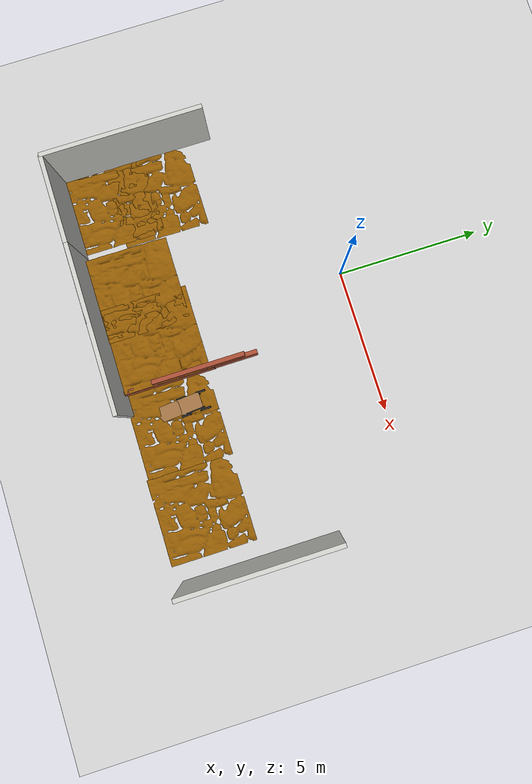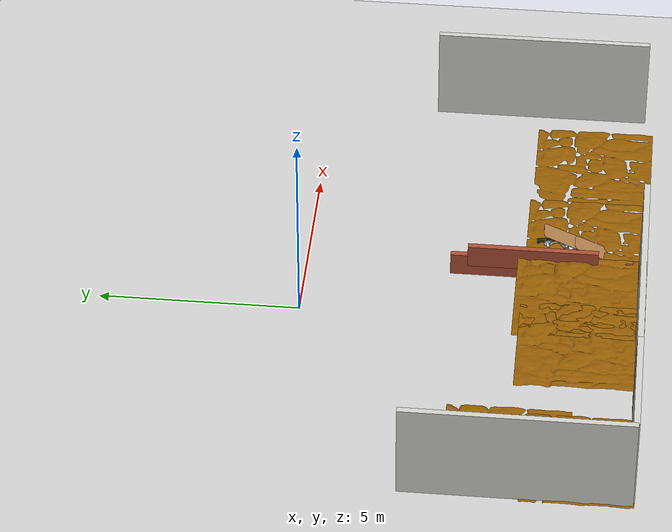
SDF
<sdf version="1.6">
 <world name="default">
  <model name="ground_plane">
   <static>1</static>
   <link name="link">
    <collision name="collision">
     <geometry><plane><normal>0 0 1</normal><size>100 100</size></plane></geometry>
     <surface>
      <contact><collide_bitmask>65535</collide_bitmask></contact>
      <friction><ode><mu>100</mu><mu2>50</mu2></ode></friction>
     </surface>
    </collision>
    <visual name="visual">
     <cast_shadows>0</cast_shadows>
     <geometry><plane><normal>0 0 1</normal><size>100 100</size></plane></geometry>
     <material>
      <script><uri>file://media/materials/scripts/gazebo.material</uri><name>Gazebo/Grey</name></script>
     </material>
    </visual>
   </link>
  </model>
  <model name="pared_1_1">
   <pose>-6.17787 -5.68421 0 0 -0 0</pose>
   <link name="Wall_21">
    <collision name="Wall_21_Collision">
     <geometry><box><size>5.5 0.15 2.5</size></box></geometry>
     <pose>0 0 1.25 0 -0 0</pose>
    </collision>
    <visual name="Wall_21_Visual">
     <pose>0 0 1.25 0 -0 0</pose>
     <geometry><box><size>5.5 0.15 2.5</size></box></geometry>
     <material>
      <script><uri>file://media/materials/scripts/gazebo.material</uri><name>Gazebo/CeilingTiled</name></script>
      <ambient>1 1 1 1</ambient>
     </material>
     <meta><layer>0</layer></meta>
    </visual>
    <pose>0 0 0 0 -0 -1.5708</pose>
   </link>
   <static>1</static>
  </model>
  <model name="pared_2_2">
   <pose>-0.261836 -8.38493 0 0 -0 0</pose>
   <link name="Wall_24">
    <collision name="Wall_24_Collision">
     <geometry><box><size>5.75 0.15 2.5</size></box></geometry>
     <pose>0 0 1.25 0 -0 0</pose>
    </collision>
    <visual name="Wall_24_Visual">
     <pose>0 0 1.25 0 -0 0</pose>
     <geometry><box><size>5.75 0.15 2.5</size></box></geometry>
     <material>
      <script><uri>file://media/materials/scripts/gazebo.material</uri><name>Gazebo/CeilingTiled</name></script>
      <ambient>1 1 1 1</ambient>
     </material>
     <meta><layer>0</layer></meta>
    </visual>
   </link>
   <static>1</static>
  </model>
  <model name="pared_1_4">
   <pose>8.44952 -5.53816 0 0 -0 0</pose>
   <link name="Wall_21">
    <collision name="Wall_21_Collision">
     <geometry><box><size>5.5 0.15 2.5</size></box></geometry>
     <pose>0 0 1.25 0 -0 0</pose>
    </collision>
    <visual name="Wall_21_Visual">
     <pose>0 0 1.25 0 -0 0</pose>
     <geometry><box><size>5.5 0.15 2.5</size></box></geometry>
     <material>
      <script><uri>file://media/materials/scripts/gazebo.material</uri><name>Gazebo/CeilingTiled</name></script>
      <ambient>1 1 1 1</ambient>
     </material>
     <meta><layer>0</layer></meta>
    </visual>
    <pose>0 0 0 0 -0 -1.5708</pose>
   </link>
   <static>1</static>
  </model>
  <model name="suelo_alto_4">
   <link name="link_0">
    <inertial>
     <mass>1</mass>
     <inertia>
      <ixx>0.166667</ixx>
      <ixy>0</ixy>
      <ixz>0</ixz>
      <iyy>0.166667</iyy>
      <iyz>0</iyz>
      <izz>0.166667</izz>
     </inertia>
    </inertial>
    <pose>-2e-06 0 0 0 -0 0</pose>
    <gravity>0</gravity>
    <visual name="visual">
     <pose>0 0 0.6 1.57 -0 0</pose>
     <geometry>
      <mesh>
       <uri>/home/christyan/catkin_sureveg/src/explorador_2/worlds/Plantas/roca2.stl</uri>
       <scale>0.005 0.003 0.005</scale>
      </mesh>
     </geometry>
     <material>
      <lighting>1</lighting>
      <script><uri>file://media/materials/scripts/gazebo.material</uri><name>Gazebo/Grey</name></script>
      <shader type="vertex"><normal_map>__default__</normal_map></shader>
      <ambient>0.561 0.349 0.008 1</ambient>
      <diffuse>0.333 0.341 0.325 1</diffuse>
      <specular>0.561 0.349 0.008 1</specular>
      <emissive>0 0 0 1</emissive>
     </material>
    </visual>
    <collision name="collision">
     <pose>0 0 0.6 1.57 -0 0</pose>
     <geometry>
      <mesh>
       <uri>/home/christyan/catkin_sureveg/src/explorador_2/worlds/Plantas/roca2.stl</uri>
       <scale>0.005 0.003 0.005</scale>
      </mesh>
     </geometry>
     <surface>
      <friction>
       <ode><mu>1</mu><mu2>1</mu2><fdir1>0 0 0</fdir1><slip1>0</slip1><slip2>0</slip2></ode>
       <torsional>
        <coefficient>1</coefficient>
        <patch_radius>0</patch_radius>
        <surface_radius>0</surface_radius>
        <use_patch_radius>1</use_patch_radius>
        <ode><slip>0</slip></ode>
       </torsional>
      </friction>
      <bounce><restitution_coefficient>0</restitution_coefficient><threshold>1e+06</threshold></bounce>
      <contact>
       <collide_without_contact>1</collide_without_contact>
       <collide_without_contact_bitmask>1</collide_without_contact_bitmask>
       <collide_bitmask>1</collide_bitmask>
       <ode>
        <soft_cfm>0</soft_cfm>
        <soft_erp>0.2</soft_erp>
        <kp>1e+13</kp>
        <kd>1</kd>
        <max_vel>0.01</max_vel>
        <min_depth>0</min_depth>
       </ode>
       <bullet>
        <split_impulse>1</split_impulse>
        <split_impulse_penetration_threshold>-0.01</split_impulse_penetration_threshold>
        <soft_cfm>0</soft_cfm>
        <soft_erp>0.2</soft_erp>
        <kp>1e+13</kp>
        <kd>1</kd>
       </bullet>
      </contact>
     </surface>
    </collision>
   </link>
   <static>0</static>
   <pose>-1.44381 -6.94746 0 0 -0 0</pose>
  </model>
  <model name="pared_corta_ladrillo_3">
   <pose>1.78731 -5.23372 0 0 -0 0</pose>
   <link name="Wall_13">
    <collision name="Wall_13_Collision">
     <geometry><box><size>3.25 0.15 0.6</size></box></geometry>
     <pose>0 0 0.3 0 -0 0</pose>
    </collision>
    <visual name="Wall_13_Visual">
     <pose>0 0 0.3 0 -0 0</pose>
     <geometry><box><size>3.25 0.15 0.6</size></box></geometry>
     <material>
      <script><uri>file://media/materials/scripts/gazebo.material</uri><name>Gazebo/Bricks</name></script>
      <ambient>0.996078 0.47451 0.0196078 1</ambient>
     </material>
     <meta><layer>0</layer></meta>
    </visual>
    <pose>0 -0 0 0 -0 1.5708</pose>
   </link>
   <static>1</static>
  </model>
  <model name="pared_corta_ladrillo_4">
   <pose>1.80713 -6.7816 0 0 -0 0</pose>
   <link name="Wall_13">
    <collision name="Wall_13_Collision">
     <geometry><box><size>3.25 0.15 0.6</size></box></geometry>
     <pose>0 0 0.3 0 -0 0</pose>
    </collision>
    <visual name="Wall_13_Visual">
     <pose>0 0 0.3 0 -0 0</pose>
     <geometry><box><size>3.25 0.15 0.6</size></box></geometry>
     <material>
      <script><uri>file://media/materials/scripts/gazebo.material</uri><name>Gazebo/Bricks</name></script>
      <ambient>0.996078 0.47451 0.0196078 1</ambient>
     </material>
     <meta><layer>0</layer></meta>
    </visual>
    <pose>0 -0 0 0 -0 1.5708</pose>
   </link>
   <static>1</static>
  </model>
  <model name="suelo_alto_6">
   <link name="link_0">
    <inertial>
     <mass>1</mass>
     <inertia>
      <ixx>0.166667</ixx>
      <ixy>0</ixy>
      <ixz>0</ixz>
      <iyy>0.166667</iyy>
      <iyz>0</iyz>
      <izz>0.166667</izz>
     </inertia>
    </inertial>
    <pose>-2e-06 0 0 0 -0 0</pose>
    <gravity>0</gravity>
    <visual name="visual">
     <pose>0 0 0.6 1.57 -0 0</pose>
     <geometry>
      <mesh>
       <uri>/home/christyan/catkin_sureveg/src/explorador_2/worlds/Plantas/roca2.stl</uri>
       <scale>0.005 0.003 0.005</scale>
      </mesh>
     </geometry>
     <material>
      <lighting>1</lighting>
      <script><uri>file://media/materials/scripts/gazebo.material</uri><name>Gazebo/Grey</name></script>
      <shader type="vertex"><normal_map>__default__</normal_map></shader>
      <ambient>0.561 0.349 0.008 1</ambient>
      <diffuse>0.333 0.341 0.325 1</diffuse>
      <specular>0.561 0.349 0.008 1</specular>
      <emissive>0 0 0 1</emissive>
     </material>
    </visual>
    <collision name="collision">
     <pose>0 0 0.6 1.57 -0 0</pose>
     <geometry>
      <mesh>
       <uri>/home/christyan/catkin_sureveg/src/explorador_2/worlds/Plantas/roca2.stl</uri>
       <scale>0.005 0.003 0.005</scale>
      </mesh>
     </geometry>
     <surface>
      <friction>
       <ode><mu>1</mu><mu2>1</mu2><fdir1>0 0 0</fdir1><slip1>0</slip1><slip2>0</slip2></ode>
       <torsional>
        <coefficient>1</coefficient>
        <patch_radius>0</patch_radius>
        <surface_radius>0</surface_radius>
        <use_patch_radius>1</use_patch_radius>
        <ode><slip>0</slip></ode>
       </torsional>
      </friction>
      <bounce><restitution_coefficient>0</restitution_coefficient><threshold>1e+06</threshold></bounce>
      <contact>
       <collide_without_contact>1</collide_without_contact>
       <collide_without_contact_bitmask>1</collide_without_contact_bitmask>
       <collide_bitmask>1</collide_bitmask>
       <ode>
        <soft_cfm>0</soft_cfm>
        <soft_erp>0.2</soft_erp>
        <kp>1e+13</kp>
        <kd>1</kd>
        <max_vel>0.01</max_vel>
        <min_depth>0</min_depth>
       </ode>
       <bullet>
        <split_impulse>1</split_impulse>
        <split_impulse_penetration_threshold>-0.01</split_impulse_penetration_threshold>
        <soft_cfm>0</soft_cfm>
        <soft_erp>0.2</soft_erp>
        <kp>1e+13</kp>
        <kd>1</kd>
       </bullet>
      </contact>
     </surface>
    </collision>
   </link>
   <static>0</static>
   <pose>0.373886 -6.79201 0 0 -0 0</pose>
  </model>
  <model name="Jaguar_30">
   <link name="base_link">
    <inertial>
     <pose>0.631513 -0.32769 -0.040585 0 -0 0</pose>
     <mass>31.8451</mass>
     <inertia>
      <ixx>0.733928</ixx>
      <ixy>0.00446716</ixy>
      <ixz>0.0110101</ixz>
      <iyy>1.30637</iyy>
      <iyz>-0.00437329</iyz>
      <izz>1.72941</izz>
     </inertia>
    </inertial>
    <collision name="base_link_collision">
     <geometry>
      <mesh><scale>1 1 1</scale><uri>/home/christyan/catkin_sureveg/src/Jaguar_30/meshes/base_link.STL</uri></mesh>
     </geometry>
    </collision>
    <collision name="base_link_fixed_joint_lump__bas1_collision_1">
     <pose>0.844257 -0.331168 0.061124 1.5708 0.573578 0</pose>
     <geometry>
      <mesh><scale>1 1 1</scale><uri>/home/christyan/catkin_sureveg/src/Jaguar_30/meshes/bas1.STL</uri></mesh>
     </geometry>
    </collision>
    <collision name="base_link_fixed_joint_lump__bas2_collision_2">
     <pose>0.43634 -0.212986 0.061124 1.5708 0.72467 -3.14159</pose>
     <geometry>
      <mesh><scale>1 1 1</scale><uri>/home/christyan/catkin_sureveg/src/Jaguar_30/meshes/bas2.STL</uri></mesh>
     </geometry>
    </collision>
    <collision name="base_link_fixed_joint_lump__h1_collision_3">
     <pose>0.399294 -0.091623 -0.04953 1.5708 -0 0</pose>
     <geometry>
      <mesh><scale>1 1 1</scale><uri>/home/christyan/catkin_sureveg/src/Jaguar_30/meshes/h1.STL</uri></mesh>
     </geometry>
    </collision>
    <collision name="base_link_fixed_joint_lump__h2_collision_4">
     <pose>0.399294 -0.561623 -0.04953 1.5708 -0 3.14159</pose>
     <geometry>
      <mesh><scale>1 1 1</scale><uri>/home/christyan/catkin_sureveg/src/Jaguar_30/meshes/h2.STL</uri></mesh>
     </geometry>
    </collision>
    <visual name="base_link_visual">
     <geometry>
      <mesh><scale>1 1 1</scale><uri>/home/christyan/catkin_sureveg/src/Jaguar_30/meshes/base_link.STL</uri></mesh>
     </geometry>
     <material>
      <script><name>Gazebo/Grey</name><uri>file://media/materials/scripts/gazebo.material</uri></script>
     </material>
    </visual>
    <visual name="base_link_fixed_joint_lump__bas1_visual_1">
     <pose>0.844257 -0.331168 0.061124 1.5708 0.573578 0</pose>
     <geometry>
      <mesh><scale>1 1 1</scale><uri>/home/christyan/catkin_sureveg/src/Jaguar_30/meshes/bas1.STL</uri></mesh>
     </geometry>
     <material>
      <script><name>Gazebo/Grey</name><uri>file://media/materials/scripts/gazebo.material</uri></script>
     </material>
    </visual>
    <visual name="base_link_fixed_joint_lump__bas2_visual_2">
     <pose>0.43634 -0.212986 0.061124 1.5708 0.72467 -3.14159</pose>
     <geometry>
      <mesh><scale>1 1 1</scale><uri>/home/christyan/catkin_sureveg/src/Jaguar_30/meshes/bas2.STL</uri></mesh>
     </geometry>
     <material>
      <script><name>Gazebo/Grey</name><uri>file://media/materials/scripts/gazebo.material</uri></script>
     </material>
    </visual>
    <visual name="base_link_fixed_joint_lump__h1_visual_3">
     <pose>0.399294 -0.091623 -0.04953 1.5708 -0 0</pose>
     <geometry>
      <mesh><scale>1 1 1</scale><uri>/home/christyan/catkin_sureveg/src/Jaguar_30/meshes/h1.STL</uri></mesh>
     </geometry>
     <material>
      <script><name>Gazebo/Black</name><uri>file://media/materials/scripts/gazebo.material</uri></script>
     </material>
    </visual>
    <visual name="base_link_fixed_joint_lump__h2_visual_4">
     <pose>0.399294 -0.561623 -0.04953 1.5708 -0 3.14159</pose>
     <geometry>
      <mesh><scale>1 1 1</scale><uri>/home/christyan/catkin_sureveg/src/Jaguar_30/meshes/h2.STL</uri></mesh>
     </geometry>
     <material>
      <script><name>Gazebo/Black</name><uri>file://media/materials/scripts/gazebo.material</uri></script>
     </material>
    </visual>
   </link>
   <link name="p1">
    <pose>0.844257 -0.331168 0.061124 1.5708 0.573578 0</pose>
    <inertial>
     <pose>-0.429299 0.073496 -0.005862 0 -0 0</pose>
     <mass>1.94644</mass>
     <inertia>
      <ixx>0.14016</ixx>
      <ixy>-0.0588447</ixy>
      <ixz>-0.00112032</ixz>
      <iyy>0.0810402</iyy>
      <iyz>0.00253372</iyz>
      <izz>0.143161</izz>
     </inertia>
    </inertial>
    <collision name="p1_collision">
     <geometry>
      <mesh><scale>1 1 1</scale><uri>/home/christyan/catkin_sureveg/src/Jaguar_30/meshes/p1.STL</uri></mesh>
     </geometry>
    </collision>
    <collision name="p1_fixed_joint_lump__tap1_collision_1">
     <pose>-0.515815 0 0.062256 0 -0 0.702939</pose>
     <geometry>
      <mesh><scale>1 1 1</scale><uri>/home/christyan/catkin_sureveg/src/Jaguar_30/meshes/tap1.STL</uri></mesh>
     </geometry>
    </collision>
    <visual name="p1_visual">
     <geometry>
      <mesh><scale>1 1 1</scale><uri>/home/christyan/catkin_sureveg/src/Jaguar_30/meshes/p1.STL</uri></mesh>
     </geometry>
    </visual>
    <visual name="p1_fixed_joint_lump__tap1_visual_1">
     <pose>-0.515815 0 0.062256 0 -0 0.702939</pose>
     <geometry>
      <mesh><scale>1 1 1</scale><uri>/home/christyan/catkin_sureveg/src/Jaguar_30/meshes/tap1.STL</uri></mesh>
     </geometry>
     <material>
      <script><name>Gazebo/Wood</name><uri>file://media/materials/scripts/gazebo.material</uri></script>
     </material>
    </visual>
   </link>
   <joint name="p1" type="prismatic">
    <child>p1</child>
    <parent>base_link</parent>
    <axis>
     <xyz>-0.839965 0 0.542641</xyz>
     <limit><lower>0</lower><upper>0</upper><effort>0</effort><velocity>0</velocity></limit>
     <dynamics><spring_reference>0</spring_reference><spring_stiffness>0</spring_stiffness></dynamics>
     <use_parent_model_frame>1</use_parent_model_frame>
    </axis>
    <physics><ode><limit><cfm>0</cfm><erp>0.2</erp></limit></ode></physics>
   </joint>
   <link name="rampa_des">
    <pose>0.510827 -0.581522 0.331185 1.5708 -0.395347 -0</pose>
    <inertial>
     <pose>-0.785282 0.010431 -0.265 0 -0 0</pose>
     <mass>1.40525</mass>
     <inertia>
      <ixx>0.0320948</ixx>
      <ixy>-0.00334456</ixy>
      <ixz>1.48431e-16</ixz>
      <iyy>0.123723</iyy>
      <iyz>-1.09164e-17</iyz>
      <izz>0.0918745</izz>
     </inertia>
    </inertial>
    <collision name="rampa_des_collision">
     <geometry>
      <mesh><scale>1 1 1</scale><uri>/home/christyan/catkin_sureveg/src/Jaguar_30/meshes/rampa_des.STL</uri></mesh>
     </geometry>
    </collision>
    <visual name="rampa_des_visual">
     <geometry>
      <mesh><scale>1 1 1</scale><uri>/home/christyan/catkin_sureveg/src/Jaguar_30/meshes/rampa_des.STL</uri></mesh>
     </geometry>
     <material>
      <script><name>Gazebo/Wood</name><uri>file://media/materials/scripts/gazebo.material</uri></script>
     </material>
    </visual>
   </link>
   <joint name="rampa_des" type="prismatic">
    <child>rampa_des</child>
    <parent>p1</parent>
    <axis>
     <xyz>0.922863 -0 0.385129</xyz>
     <limit><lower>0</lower><upper>0</upper><effort>0</effort><velocity>0</velocity></limit>
     <dynamics><spring_reference>0</spring_reference><spring_stiffness>0</spring_stiffness></dynamics>
     <use_parent_model_frame>1</use_parent_model_frame>
    </axis>
    <physics><ode><limit><cfm>0</cfm><erp>0.2</erp></limit></ode></physics>
   </joint>
   <link name="p2">
    <pose>0.43634 -0.212986 0.061124 1.5708 0.72467 -3.14159</pose>
    <inertial>
     <pose>-0.295976 0.060523 -0.026669 0 -0 0</pose>
     <mass>0.228887</mass>
     <inertia>
      <ixx>0.000115861</ixx>
      <ixy>0.000448579</ixy>
      <ixz>-1.04548e-10</ixz>
      <iyy>0.00221782</iyy>
      <iyz>-1.38424e-10</iyz>
      <izz>0.00230969</izz>
     </inertia>
    </inertial>
    <collision name="p2_collision">
     <geometry>
      <mesh><scale>1 1 1</scale><uri>/home/christyan/catkin_sureveg/src/Jaguar_30/meshes/p2.STL</uri></mesh>
     </geometry>
    </collision>
    <visual name="p2_visual">
     <geometry>
      <mesh><scale>1 1 1</scale><uri>/home/christyan/catkin_sureveg/src/Jaguar_30/meshes/p2.STL</uri></mesh>
     </geometry>
    </visual>
   </link>
   <joint name="p2" type="prismatic">
    <child>p2</child>
    <parent>base_link</parent>
    <axis>
     <xyz>-0.748718 -0 -0.662889</xyz>
     <limit><lower>0</lower><upper>0</upper><effort>0</effort><velocity>0</velocity></limit>
     <dynamics><spring_reference>0</spring_reference><spring_stiffness>0</spring_stiffness></dynamics>
     <use_parent_model_frame>1</use_parent_model_frame>
    </axis>
   </joint>
   <link name="f1">
    <pose>0.869294 0 -0.04395 1.5708 -0.034203 3.14159</pose>
    <inertial>
     <pose>-0.078852 0.001667 -0.040364 0 -0 0</pose>
     <mass>1.44866</mass>
     <inertia>
      <ixx>0.00466422</ixx>
      <ixy>0.00046521</ixy>
      <ixz>0.00113574</ixz>
      <iyy>0.0193983</iyy>
      <iyz>-1.6619e-05</iyz>
      <izz>0.0201484</izz>
     </inertia>
    </inertial>
    <collision name="f1_collision">
     <geometry>
      <mesh><scale>1 1 1</scale><uri>/home/christyan/catkin_sureveg/src/Jaguar_30/meshes/f1.STL</uri></mesh>
     </geometry>
    </collision>
    <visual name="f1_visual">
     <geometry>
      <mesh><scale>1 1 1</scale><uri>/home/christyan/catkin_sureveg/src/Jaguar_30/meshes/f1.STL</uri></mesh>
     </geometry>
     <material>
      <script><name>Gazebo/Black</name><uri>file://media/materials/scripts/gazebo.material</uri></script>
     </material>
    </visual>
   </link>
   <joint name="f1" type="revolute">
    <child>f1</child>
    <parent>base_link</parent>
    <axis>
     <xyz>0 1 -0</xyz>
     <limit><lower>0</lower><upper>0</upper><effort>0</effort><velocity>0</velocity></limit>
     <dynamics><spring_reference>0</spring_reference><spring_stiffness>0</spring_stiffness></dynamics>
     <use_parent_model_frame>1</use_parent_model_frame>
    </axis>
    <physics><ode><limit><cfm>0</cfm><erp>0.2</erp></limit></ode></physics>
   </joint>
   <link name="f2">
    <pose>0.399294 0 -0.043725 -1.5708 -0.043158 0</pose>
    <inertial>
     <pose>-0.078864 -0.000954 -0.040364 0 -0 0</pose>
     <mass>1.44866</mass>
     <inertia>
      <ixx>0.00464959</ixx>
      <ixy>-2.51701e-05</ixy>
      <ixz>0.00113567</ixz>
      <iyy>0.0194129</iyy>
      <iyz>2.11318e-05</iyz>
      <izz>0.0201484</izz>
     </inertia>
    </inertial>
    <collision name="f2_collision">
     <geometry>
      <mesh><scale>1 1 1</scale><uri>/home/christyan/catkin_sureveg/src/Jaguar_30/meshes/f2.STL</uri></mesh>
     </geometry>
    </collision>
    <visual name="f2_visual">
     <geometry>
      <mesh><scale>1 1 1</scale><uri>/home/christyan/catkin_sureveg/src/Jaguar_30/meshes/f2.STL</uri></mesh>
     </geometry>
     <material>
      <script><name>Gazebo/Black</name><uri>file://media/materials/scripts/gazebo.material</uri></script>
     </material>
    </visual>
   </link>
   <joint name="f2" type="revolute">
    <child>f2</child>
    <parent>base_link</parent>
    <axis>
     <xyz>0 1 -0</xyz>
     <limit><lower>0</lower><upper>0</upper><effort>0</effort><velocity>0</velocity></limit>
     <dynamics><spring_reference>0</spring_reference><spring_stiffness>0</spring_stiffness></dynamics>
     <use_parent_model_frame>1</use_parent_model_frame>
    </axis>
    <physics><ode><limit><cfm>0</cfm><erp>0.2</erp></limit></ode></physics>
   </joint>
   <link name="f3">
    <pose>0.869294 -0.421623 -0.04395 -1.5708 -0.034203 3.14159</pose>
    <inertial>
     <pose>-0.078788 -0.003574 0.191259 0 -0 0</pose>
     <mass>1.44866</mass>
     <inertia>
      <ixx>0.00466757</ixx>
      <ixy>-0.000515439</ixy>
      <ixz>0.00113434</ixz>
      <iyy>0.0193949</iyy>
      <iyz>5.88592e-05</iyz>
      <izz>0.0201484</izz>
     </inertia>
    </inertial>
    <collision name="f3_collision">
     <geometry>
      <mesh><scale>1 1 1</scale><uri>/home/christyan/catkin_sureveg/src/Jaguar_30/meshes/f3.STL</uri></mesh>
     </geometry>
    </collision>
    <visual name="f3_visual">
     <geometry>
      <mesh><scale>1 1 1</scale><uri>/home/christyan/catkin_sureveg/src/Jaguar_30/meshes/f3.STL</uri></mesh>
     </geometry>
     <material>
      <script><name>Gazebo/Black</name><uri>file://media/materials/scripts/gazebo.material</uri></script>
     </material>
    </visual>
   </link>
   <joint name="f3" type="revolute">
    <child>f3</child>
    <parent>base_link</parent>
    <axis>
     <xyz>-0 -1 -0</xyz>
     <limit><lower>0</lower><upper>0</upper><effort>0</effort><velocity>0</velocity></limit>
     <dynamics><spring_reference>0</spring_reference><spring_stiffness>0</spring_stiffness></dynamics>
     <use_parent_model_frame>1</use_parent_model_frame>
    </axis>
    <physics><ode><limit><cfm>0</cfm><erp>0.2</erp></limit></ode></physics>
   </joint>
   <link name="f4">
    <pose>0.399294 -0.421623 -0.043725 1.5708 -0.043158 0</pose>
    <inertial>
     <pose>-0.078864 -0.000954 0.191259 0 -0 0</pose>
     <mass>1.44866</mass>
     <inertia>
      <ixx>0.00464959</ixx>
      <ixy>-2.51701e-05</ixy>
      <ixz>0.00113567</ixz>
      <iyy>0.0194129</iyy>
      <iyz>2.11318e-05</iyz>
      <izz>0.0201484</izz>
     </inertia>
    </inertial>
    <collision name="f4_collision">
     <geometry>
      <mesh><scale>1 1 1</scale><uri>/home/christyan/catkin_sureveg/src/Jaguar_30/meshes/f4.STL</uri></mesh>
     </geometry>
    </collision>
    <visual name="f4_visual">
     <geometry>
      <mesh><scale>1 1 1</scale><uri>/home/christyan/catkin_sureveg/src/Jaguar_30/meshes/f4.STL</uri></mesh>
     </geometry>
     <material>
      <script><name>Gazebo/Black</name><uri>file://media/materials/scripts/gazebo.material</uri></script>
     </material>
    </visual>
   </link>
   <joint name="f4" type="revolute">
    <child>f4</child>
    <parent>base_link</parent>
    <axis>
     <xyz>0 -1 -0</xyz>
     <limit><lower>0</lower><upper>0</upper><effort>0</effort><velocity>0</velocity></limit>
     <dynamics><spring_reference>0</spring_reference><spring_stiffness>0</spring_stiffness></dynamics>
     <use_parent_model_frame>1</use_parent_model_frame>
    </axis>
    <physics><ode><limit><cfm>0</cfm><erp>0.2</erp></limit></ode></physics>
   </joint>
   <link name="r1">
    <pose>0.869294 -0.066623 -0.04395 -1.5708 -0.314929 3.14159</pose>
    <inertial>
     <pose>0 -4.2e-05 0.042573 0 -0 0</pose>
     <mass>1.24851</mass>
     <inertia>
      <ixx>0.00455644</ixx>
      <ixy>-1.0842e-19</ixy>
      <ixz>4.28387e-19</ixz>
      <iyy>0.00455966</iyy>
      <iyz>-1.9821e-06</iyz>
      <izz>0.00416875</izz>
     </inertia>
    </inertial>
    <collision name="r1_collision">
     <geometry>
      <mesh><scale>1 1 1</scale><uri>/home/christyan/catkin_sureveg/src/Jaguar_30/meshes/r1.STL</uri></mesh>
     </geometry>
    </collision>
    <visual name="r1_visual">
     <geometry>
      <mesh><scale>1 1 1</scale><uri>/home/christyan/catkin_sureveg/src/Jaguar_30/meshes/r1.STL</uri></mesh>
     </geometry>
     <material>
      <script><name>Gazebo/White</name><uri>file://media/materials/scripts/gazebo.material</uri></script>
     </material>
    </visual>
   </link>
   <joint name="r1" type="revolute">
    <child>r1</child>
    <parent>base_link</parent>
    <axis>
     <xyz>-0 -1 -0</xyz>
     <limit><lower>0</lower><upper>0</upper><effort>0</effort><velocity>0</velocity></limit>
     <dynamics><spring_reference>0</spring_reference><spring_stiffness>0</spring_stiffness></dynamics>
     <use_parent_model_frame>1</use_parent_model_frame>
    </axis>
    <physics><ode><limit><cfm>0</cfm><erp>0.2</erp></limit></ode></physics>
   </joint>
   <link name="r2">
    <pose>0.399294 0 -0.043725 -1.5708 -0.043158 0</pose>
    <inertial>
     <pose>-2.3e-05 3.6e-05 -0.109196 0 -0 0</pose>
     <mass>1.24851</mass>
     <inertia>
      <ixx>0.00455737</ixx>
      <ixy>-1.46024e-06</ixy>
      <ixz>1.06584e-06</ixz>
      <iyy>0.00455872</iyy>
      <iyz>-1.67114e-06</iyz>
      <izz>0.00416875</izz>
     </inertia>
    </inertial>
    <collision name="r2_collision">
     <geometry>
      <mesh><scale>1 1 1</scale><uri>/home/christyan/catkin_sureveg/src/Jaguar_30/meshes/r2.STL</uri></mesh>
     </geometry>
    </collision>
    <visual name="r2_visual">
     <geometry>
      <mesh><scale>1 1 1</scale><uri>/home/christyan/catkin_sureveg/src/Jaguar_30/meshes/r2.STL</uri></mesh>
     </geometry>
     <material>
      <script><name>Gazebo/White</name><uri>file://media/materials/scripts/gazebo.material</uri></script>
     </material>
    </visual>
   </link>
   <joint name="r2" type="revolute">
    <child>r2</child>
    <parent>base_link</parent>
    <axis>
     <xyz>0 1 -0</xyz>
     <limit><lower>0</lower><upper>0</upper><effort>0</effort><velocity>0</velocity></limit>
     <dynamics><spring_reference>0</spring_reference><spring_stiffness>0</spring_stiffness></dynamics>
     <use_parent_model_frame>1</use_parent_model_frame>
    </axis>
    <physics><ode><limit><cfm>0</cfm><erp>0.2</erp></limit></ode></physics>
   </joint>
   <link name="r3">
    <pose>0.869294 -0.386623 -0.04395 -1.5708 1.20901 0</pose>
    <inertial>
     <pose>0 -4.2e-05 -0.157427 0 -0 0</pose>
     <mass>1.24851</mass>
     <inertia>
      <ixx>0.00455644</ixx>
      <ixy>-5.42101e-19</ixy>
      <ixz>9.35971e-20</ixz>
      <iyy>0.00455966</iyy>
      <iyz>-1.9821e-06</iyz>
      <izz>0.00416875</izz>
     </inertia>
    </inertial>
    <collision name="r3_collision">
     <geometry>
      <mesh><scale>1 1 1</scale><uri>/home/christyan/catkin_sureveg/src/Jaguar_30/meshes/r3.STL</uri></mesh>
     </geometry>
    </collision>
    <visual name="r3_visual">
     <geometry>
      <mesh><scale>1 1 1</scale><uri>/home/christyan/catkin_sureveg/src/Jaguar_30/meshes/r3.STL</uri></mesh>
     </geometry>
     <material>
      <script><name>Gazebo/White</name><uri>file://media/materials/scripts/gazebo.material</uri></script>
     </material>
    </visual>
   </link>
   <joint name="r3" type="revolute">
    <child>r3</child>
    <parent>base_link</parent>
    <axis>
     <xyz>-0 1 -0</xyz>
     <limit><lower>0</lower><upper>0</upper><effort>0</effort><velocity>0</velocity></limit>
     <dynamics><spring_reference>0</spring_reference><spring_stiffness>0</spring_stiffness></dynamics>
     <use_parent_model_frame>1</use_parent_model_frame>
    </axis>
    <physics><ode><limit><cfm>0</cfm><erp>0.2</erp></limit></ode></physics>
   </joint>
   <link name="r4">
    <pose>0.399294 -0.386623 -0.043725 -1.5708 1.20901 0</pose>
    <inertial>
     <pose>0 -4.2e-05 -0.157427 0 -0 0</pose>
     <mass>1.24851</mass>
     <inertia>
      <ixx>0.00455644</ixx>
      <ixy>-1.19262e-18</ixy>
      <ixz>-9.9664e-19</ixz>
      <iyy>0.00455966</iyy>
      <iyz>-1.9821e-06</iyz>
      <izz>0.00416875</izz>
     </inertia>
    </inertial>
    <collision name="r4_collision">
     <geometry>
      <mesh><scale>1 1 1</scale><uri>/home/christyan/catkin_sureveg/src/Jaguar_30/meshes/r4.STL</uri></mesh>
     </geometry>
    </collision>
    <visual name="r4_visual">
     <geometry>
      <mesh><scale>1 1 1</scale><uri>/home/christyan/catkin_sureveg/src/Jaguar_30/meshes/r4.STL</uri></mesh>
     </geometry>
     <material>
      <script><name>Gazebo/White</name><uri>file://media/materials/scripts/gazebo.material</uri></script>
     </material>
    </visual>
   </link>
   <joint name="r4" type="revolute">
    <child>r4</child>
    <parent>base_link</parent>
    <axis>
     <xyz>-0 1 -0</xyz>
     <limit><lower>0</lower><upper>0</upper><effort>0</effort><velocity>0</velocity></limit>
     <dynamics><spring_reference>0</spring_reference><spring_stiffness>0</spring_stiffness></dynamics>
     <use_parent_model_frame>1</use_parent_model_frame>
    </axis>
    <physics><ode><limit><cfm>0</cfm><erp>0.2</erp></limit></ode></physics>
   </joint>
   <pose>2.50285 -6.88216 0.129387 0.003884 -0.000158 1.61213</pose>
  </model>
  <model name="suelo_1_15">
   <link name="link_0">
    <inertial>
     <mass>1</mass>
     <inertia>
      <ixx>0.166667</ixx>
      <ixy>0</ixy>
      <ixz>0</ixz>
      <iyy>0.166667</iyy>
      <iyz>0</iyz>
      <izz>0.166667</izz>
     </inertia>
    </inertial>
    <pose>-2e-06 0 0 0 -0 0</pose>
    <gravity>0</gravity>
    <visual name="visual">
     <pose>0 0 0 1.57 -0 0</pose>
     <geometry>
      <mesh>
       <uri>/home/christyan/catkin_sureveg/src/explorador_2/worlds/Plantas/roca2.stl</uri>
       <scale>0.005 0.003 0.005</scale>
      </mesh>
     </geometry>
     <material>
      <lighting>1</lighting>
      <script><uri>file://media/materials/scripts/gazebo.material</uri><name>Gazebo/Grey</name></script>
      <shader type="vertex"><normal_map>__default__</normal_map></shader>
      <ambient>0.561 0.349 0.008 1</ambient>
      <diffuse>0.333 0.341 0.325 1</diffuse>
      <specular>0.561 0.349 0.008 1</specular>
      <emissive>0 0 0 1</emissive>
     </material>
    </visual>
    <collision name="collision">
     <pose>0 0 0 1.57 -0 0</pose>
     <geometry>
      <mesh>
       <uri>/home/christyan/catkin_sureveg/src/explorador_2/worlds/Plantas/roca2.stl</uri>
       <scale>0.005 0.003 0.005</scale>
      </mesh>
     </geometry>
     <surface>
      <friction>
       <ode><mu>1</mu><mu2>1</mu2><fdir1>0 0 0</fdir1><slip1>0</slip1><slip2>0</slip2></ode>
       <torsional>
        <coefficient>1</coefficient>
        <patch_radius>0</patch_radius>
        <surface_radius>0</surface_radius>
        <use_patch_radius>1</use_patch_radius>
        <ode><slip>0</slip></ode>
       </torsional>
      </friction>
      <bounce><restitution_coefficient>0</restitution_coefficient><threshold>1e+06</threshold></bounce>
      <contact>
       <collide_without_contact>1</collide_without_contact>
       <collide_without_contact_bitmask>1</collide_without_contact_bitmask>
       <collide_bitmask>1</collide_bitmask>
       <ode>
        <soft_cfm>0</soft_cfm>
        <soft_erp>0.2</soft_erp>
        <kp>1e+13</kp>
        <kd>1</kd>
        <max_vel>0.01</max_vel>
        <min_depth>0</min_depth>
       </ode>
       <bullet>
        <split_impulse>1</split_impulse>
        <split_impulse_penetration_threshold>-0.01</split_impulse_penetration_threshold>
        <soft_cfm>0</soft_cfm>
        <soft_erp>0.2</soft_erp>
        <kp>1e+13</kp>
        <kd>1</kd>
       </bullet>
      </contact>
     </surface>
    </collision>
   </link>
   <static>0</static>
   <pose>3.34539 -6.95171 0 0 -0 0</pose>
  </model>
  <model name="suelo_1_16">
   <link name="link_0">
    <inertial>
     <mass>1</mass>
     <inertia>
      <ixx>0.166667</ixx>
      <ixy>0</ixy>
      <ixz>0</ixz>
      <iyy>0.166667</iyy>
      <iyz>0</iyz>
      <izz>0.166667</izz>
     </inertia>
    </inertial>
    <pose>-2e-06 0 0 0 -0 0</pose>
    <gravity>0</gravity>
    <visual name="visual">
     <pose>0 0 0 1.57 -0 0</pose>
     <geometry>
      <mesh>
       <uri>/home/christyan/catkin_sureveg/src/explorador_2/worlds/Plantas/roca2.stl</uri>
       <scale>0.005 0.003 0.005</scale>
      </mesh>
     </geometry>
     <material>
      <lighting>1</lighting>
      <script><uri>file://media/materials/scripts/gazebo.material</uri><name>Gazebo/Grey</name></script>
      <shader type="vertex"><normal_map>__default__</normal_map></shader>
      <ambient>0.561 0.349 0.008 1</ambient>
      <diffuse>0.333 0.341 0.325 1</diffuse>
      <specular>0.561 0.349 0.008 1</specular>
      <emissive>0 0 0 1</emissive>
     </material>
    </visual>
    <collision name="collision">
     <pose>0 0 0 1.57 -0 0</pose>
     <geometry>
      <mesh>
       <uri>/home/christyan/catkin_sureveg/src/explorador_2/worlds/Plantas/roca2.stl</uri>
       <scale>0.005 0.003 0.005</scale>
      </mesh>
     </geometry>
     <surface>
      <friction>
       <ode><mu>1</mu><mu2>1</mu2><fdir1>0 0 0</fdir1><slip1>0</slip1><slip2>0</slip2></ode>
       <torsional>
        <coefficient>1</coefficient>
        <patch_radius>0</patch_radius>
        <surface_radius>0</surface_radius>
        <use_patch_radius>1</use_patch_radius>
        <ode><slip>0</slip></ode>
       </torsional>
      </friction>
      <bounce><restitution_coefficient>0</restitution_coefficient><threshold>1e+06</threshold></bounce>
      <contact>
       <collide_without_contact>1</collide_without_contact>
       <collide_without_contact_bitmask>1</collide_without_contact_bitmask>
       <collide_bitmask>1</collide_bitmask>
       <ode>
        <soft_cfm>0</soft_cfm>
        <soft_erp>0.2</soft_erp>
        <kp>1e+13</kp>
        <kd>1</kd>
        <max_vel>0.01</max_vel>
        <min_depth>0</min_depth>
       </ode>
       <bullet>
        <split_impulse>1</split_impulse>
        <split_impulse_penetration_threshold>-0.01</split_impulse_penetration_threshold>
        <soft_cfm>0</soft_cfm>
        <soft_erp>0.2</soft_erp>
        <kp>1e+13</kp>
        <kd>1</kd>
       </bullet>
      </contact>
     </surface>
    </collision>
   </link>
   <static>0</static>
   <pose>6.3308 -7.01281 0 0 -0 0</pose>
  </model>
  <model name="pared_2_1">
   <pose>-3.28571 -8.38906 0 0 -0 0</pose>
   <link name="Wall_24">
    <collision name="Wall_24_Collision">
     <geometry><box><size>5.75 0.15 2.5</size></box></geometry>
     <pose>0 0 1.25 0 -0 0</pose>
    </collision>
    <visual name="Wall_24_Visual">
     <pose>0 0 1.25 0 -0 0</pose>
     <geometry><box><size>5.75 0.15 2.5</size></box></geometry>
     <material>
      <script><uri>file://media/materials/scripts/gazebo.material</uri><name>Gazebo/CeilingTiled</name></script>
      <ambient>1 1 1 1</ambient>
     </material>
     <meta><layer>0</layer></meta>
    </visual>
   </link>
   <static>1</static>
  </model>
  <model name="suelo_1_21">
   <link name="link_0">
    <inertial>
     <mass>1</mass>
     <inertia>
      <ixx>0.166667</ixx>
      <ixy>0</ixy>
      <ixz>0</ixz>
      <iyy>0.166667</iyy>
      <iyz>0</iyz>
      <izz>0.166667</izz>
     </inertia>
    </inertial>
    <pose>-2e-06 0 0 0 -0 0</pose>
    <gravity>0</gravity>
    <visual name="visual">
     <pose>0 0 0 1.57 -0 0</pose>
     <geometry>
      <mesh>
       <uri>/home/christyan/catkin_sureveg/src/explorador_2/worlds/Plantas/roca2.stl</uri>
       <scale>0.005 0.003 0.005</scale>
      </mesh>
     </geometry>
     <material>
      <lighting>1</lighting>
      <script><uri>file://media/materials/scripts/gazebo.material</uri><name>Gazebo/Grey</name></script>
      <shader type="vertex"><normal_map>__default__</normal_map></shader>
      <ambient>0.561 0.349 0.008 1</ambient>
      <diffuse>0.333 0.341 0.325 1</diffuse>
      <specular>0.561 0.349 0.008 1</specular>
      <emissive>0 0 0 1</emissive>
     </material>
    </visual>
    <collision name="collision">
     <pose>0 0 0 1.57 -0 0</pose>
     <geometry>
      <mesh>
       <uri>/home/christyan/catkin_sureveg/src/explorador_2/worlds/Plantas/roca2.stl</uri>
       <scale>0.005 0.003 0.005</scale>
      </mesh>
     </geometry>
     <surface>
      <friction>
       <ode><mu>1</mu><mu2>1</mu2><fdir1>0 0 0</fdir1><slip1>0</slip1><slip2>0</slip2></ode>
       <torsional>
        <coefficient>1</coefficient>
        <patch_radius>0</patch_radius>
        <surface_radius>0</surface_radius>
        <use_patch_radius>1</use_patch_radius>
        <ode><slip>0</slip></ode>
       </torsional>
      </friction>
      <bounce><restitution_coefficient>0</restitution_coefficient><threshold>1e+06</threshold></bounce>
      <contact>
       <collide_without_contact>1</collide_without_contact>
       <collide_without_contact_bitmask>1</collide_without_contact_bitmask>
       <collide_bitmask>1</collide_bitmask>
       <ode>
        <soft_cfm>0</soft_cfm>
        <soft_erp>0.2</soft_erp>
        <kp>1e+13</kp>
        <kd>1</kd>
        <max_vel>0.01</max_vel>
        <min_depth>0</min_depth>
       </ode>
       <bullet>
        <split_impulse>1</split_impulse>
        <split_impulse_penetration_threshold>-0.01</split_impulse_penetration_threshold>
        <soft_cfm>0</soft_cfm>
        <soft_erp>0.2</soft_erp>
        <kp>1e+13</kp>
        <kd>1</kd>
       </bullet>
      </contact>
     </surface>
    </collision>
   </link>
   <static>0</static>
   <pose>-4.65972 -5.392 0 0 -0 0</pose>
  </model>
  <model name="suelo_1_22">
   <link name="link_0">
    <inertial>
     <mass>1</mass>
     <inertia>
      <ixx>0.166667</ixx>
      <ixy>0</ixy>
      <ixz>0</ixz>
      <iyy>0.166667</iyy>
      <iyz>0</iyz>
      <izz>0.166667</izz>
     </inertia>
    </inertial>
    <pose>-2e-06 0 0 0 -0 0</pose>
    <gravity>0</gravity>
    <visual name="visual">
     <pose>0 0 0 1.57 -0 0</pose>
     <geometry>
      <mesh>
       <uri>/home/christyan/catkin_sureveg/src/explorador_2/worlds/Plantas/roca2.stl</uri>
       <scale>0.005 0.003 0.005</scale>
      </mesh>
     </geometry>
     <material>
      <lighting>1</lighting>
      <script><uri>file://media/materials/scripts/gazebo.material</uri><name>Gazebo/Grey</name></script>
      <shader type="vertex"><normal_map>__default__</normal_map></shader>
      <ambient>0.561 0.349 0.008 1</ambient>
      <diffuse>0.333 0.341 0.325 1</diffuse>
      <specular>0.561 0.349 0.008 1</specular>
      <emissive>0 0 0 1</emissive>
     </material>
    </visual>
    <collision name="collision">
     <pose>0 0 0 1.57 -0 0</pose>
     <geometry>
      <mesh>
       <uri>/home/christyan/catkin_sureveg/src/explorador_2/worlds/Plantas/roca2.stl</uri>
       <scale>0.005 0.003 0.005</scale>
      </mesh>
     </geometry>
     <surface>
      <friction>
       <ode><mu>1</mu><mu2>1</mu2><fdir1>0 0 0</fdir1><slip1>0</slip1><slip2>0</slip2></ode>
       <torsional>
        <coefficient>1</coefficient>
        <patch_radius>0</patch_radius>
        <surface_radius>0</surface_radius>
        <use_patch_radius>1</use_patch_radius>
        <ode><slip>0</slip></ode>
       </torsional>
      </friction>
      <bounce><restitution_coefficient>0</restitution_coefficient><threshold>1e+06</threshold></bounce>
      <contact>
       <collide_without_contact>1</collide_without_contact>
       <collide_without_contact_bitmask>1</collide_without_contact_bitmask>
       <collide_bitmask>1</collide_bitmask>
       <ode>
        <soft_cfm>0</soft_cfm>
        <soft_erp>0.2</soft_erp>
        <kp>1e+13</kp>
        <kd>1</kd>
        <max_vel>0.01</max_vel>
        <min_depth>0</min_depth>
       </ode>
       <bullet>
        <split_impulse>1</split_impulse>
        <split_impulse_penetration_threshold>-0.01</split_impulse_penetration_threshold>
        <soft_cfm>0</soft_cfm>
        <soft_erp>0.2</soft_erp>
        <kp>1e+13</kp>
        <kd>1</kd>
       </bullet>
      </contact>
     </surface>
    </collision>
   </link>
   <static>0</static>
   <pose>-4.81898 -6.95277 0 0 -0 0</pose>
  </model>
  <model name="pared_corta_ladrillo_4_clone">
   <pose>1.76489 -5.66388 0.295621 0 -0 0</pose>
   <link name="Wall_13">
    <collision name="Wall_13_Collision">
     <geometry><box><size>3.25 0.15 0.6</size></box></geometry>
     <pose>0 0 0.3 0 -0 0</pose>
    </collision>
    <visual name="Wall_13_Visual">
     <pose>0 0 0.3 0 -0 0</pose>
     <geometry><box><size>3.25 0.15 0.6</size></box></geometry>
     <material>
      <script><uri>file://media/materials/scripts/gazebo.material</uri><name>Gazebo/Bricks</name></script>
      <ambient>0.996078 0.47451 0.0196078 1</ambient>
     </material>
     <meta><layer>0</layer></meta>
    </visual>
    <pose>0 -0 0 0 -0 1.5708</pose>
   </link>
   <static>1</static>
  </model>
 </world>
</sdf>
